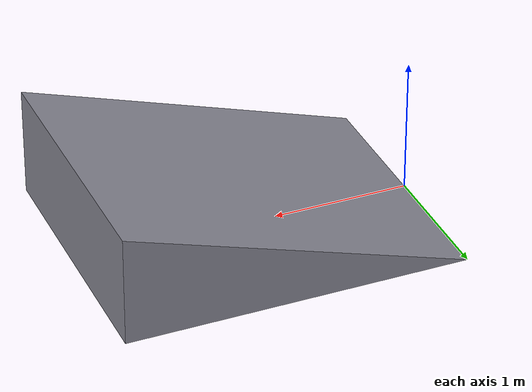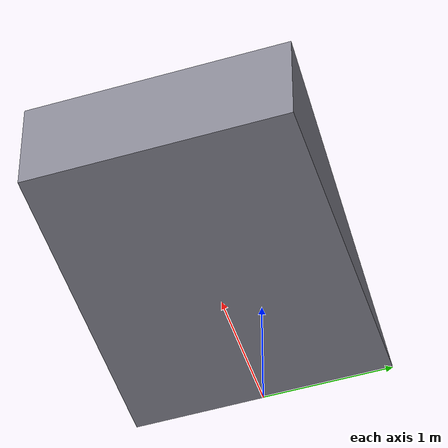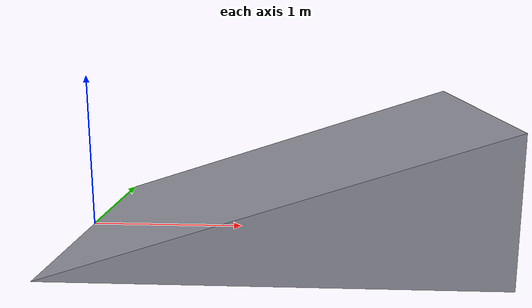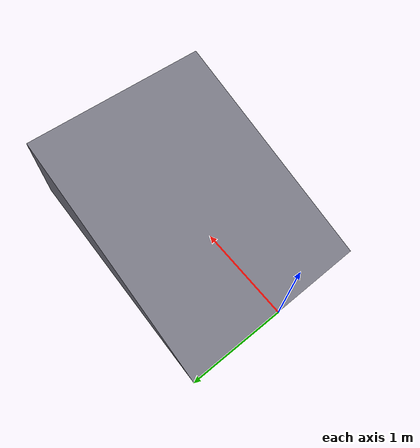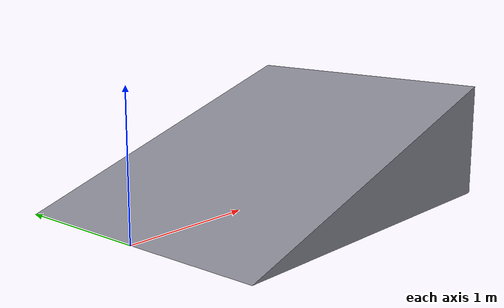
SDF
<?xml version="1.0"?>
<sdf version="1.8">
  <model name="ramp">
    <static>true</static>
    <link name="ramp_link">
      <visual name="visual">
        <geometry>
          <mesh>
            <uri>package://gazebo_models/meshes/ramp_wedge_18.stl</uri>
          </mesh>
        </geometry>
        <material>
          <ambient>0.55 0.55 0.6 1</ambient>
          <diffuse>0.55 0.55 0.6 1</diffuse>
        </material>
      </visual>
      <collision name="collision">
        <geometry>
          <mesh>
            <uri>package://gazebo_models/meshes/ramp_wedge_18.stl</uri>
          </mesh>
        </geometry>
      </collision>
    </link>
  </model>
</sdf>
